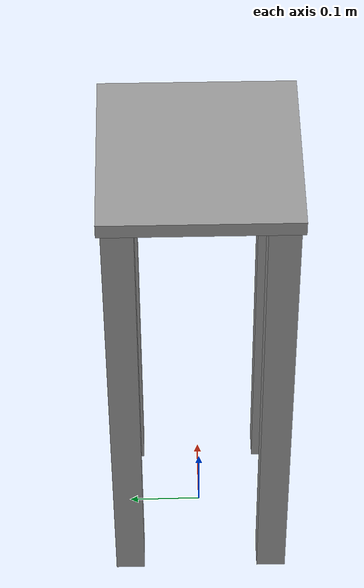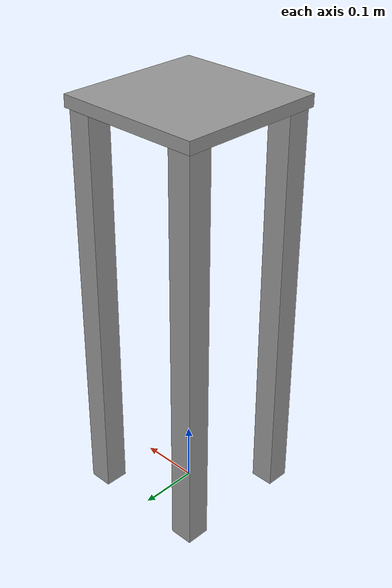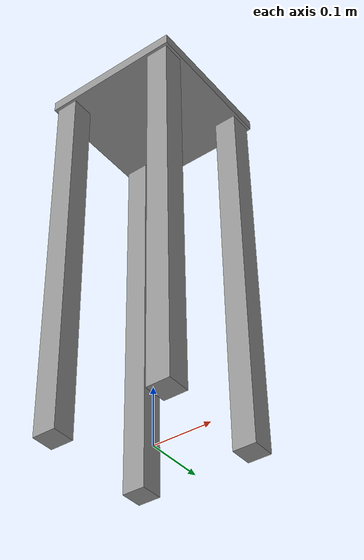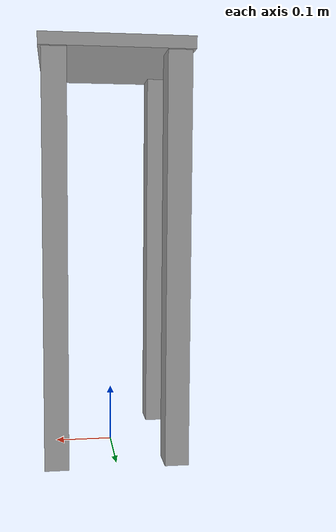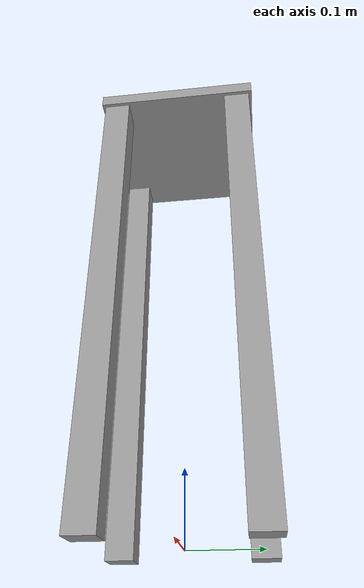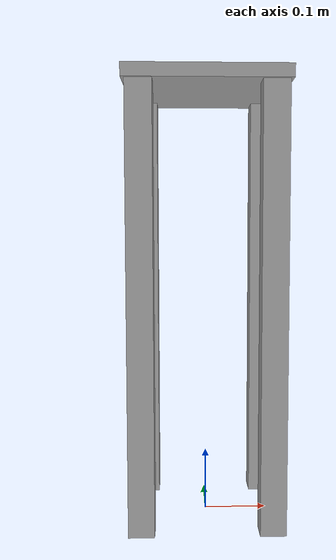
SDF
<?xml version="1.0"?>

<sdf version="1.6">
  <model name="ur_base">
    <static>true</static>

    <link name="top_plate">
      <pose>0 0 0.69 0 0 0</pose>
      <collision name="top_plate_collision">
        <geometry>
          <box>
            <size>0.25 0.25 0.02</size>
          </box>
        </geometry>
        <surface>
          <contact>
            <collide_bitmask>0x01</collide_bitmask>
          </contact>
        </surface>
      </collision>
      <visual name="top_plate_visual">
        <geometry>
          <box>
            <size>0.25 0.25 0.02</size>
          </box>
        </geometry>
        <material>
          <script>
            <uri>model://media/materials/scripts/gazebo.material</uri>
            <name>Gazebo/Grey</name>
          </script>
        </material>
      </visual>
    </link>
    <link name="leg1">
      <pose>0.10 0.10 0.34 0 0 0</pose>
      <visual name="leg1_visual">
        <geometry>
          <box>
            <size>0.04 0.04 0.68</size>
          </box>
        </geometry>
        <material>
          <script>
            <uri>model://media/materials/scripts/gazebo.material</uri>
            <name>Gazebo/Grey</name>
          </script>
        </material>
      </visual>
    </link>
    <link name="leg2">
      <pose>-0.10 0.10 0.34 0 0 0</pose>
      <visual name="leg2_visual">
        <geometry>
          <box>
            <size>0.04 0.04 0.68</size>
          </box>
        </geometry>
        <material>
          <script>
            <uri>model://media/materials/scripts/gazebo.material</uri>
            <name>Gazebo/Grey</name>
          </script>
        </material>
      </visual>
    </link>
    <link name="leg3">
      <pose>0.10 -0.10 0.34 0 0 0</pose>
      <visual name="leg3_visual">
        <geometry>
          <box>
            <size>0.04 0.04 0.68</size>
          </box>
        </geometry>
        <material>
          <script>
            <uri>model://media/materials/scripts/gazebo.material</uri>
            <name>Gazebo/Grey</name>
          </script>
        </material>
      </visual>
    </link>
    <link name="leg4">
      <pose>-0.10 -0.10 0.34 0 0 0</pose>
      <visual name="leg4_visual">
        <geometry>
          <box>
            <size>0.04 0.04 0.68</size>
          </box>
        </geometry>
        <material>
          <script>
            <uri>model://media/materials/scripts/gazebo.material</uri>
            <name>Gazebo/Grey</name>
          </script>
        </material>
      </visual>
    </link>
  </model>
</sdf>
